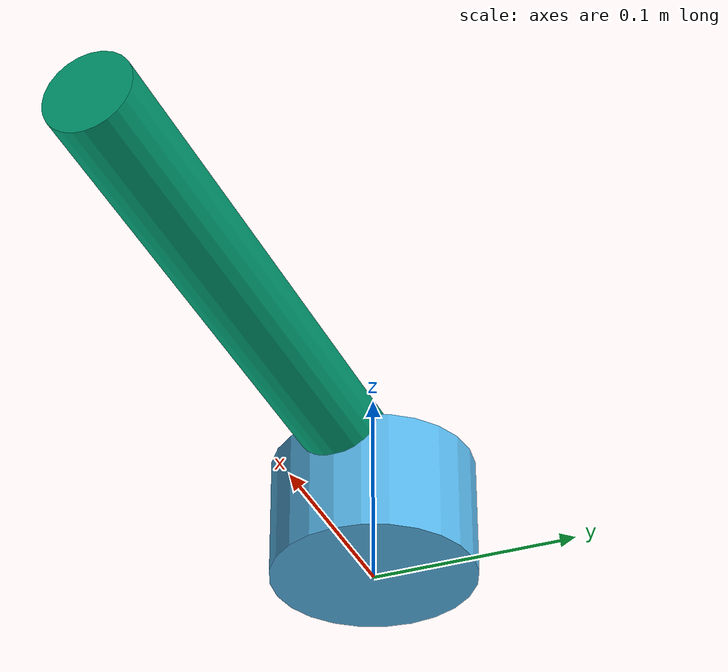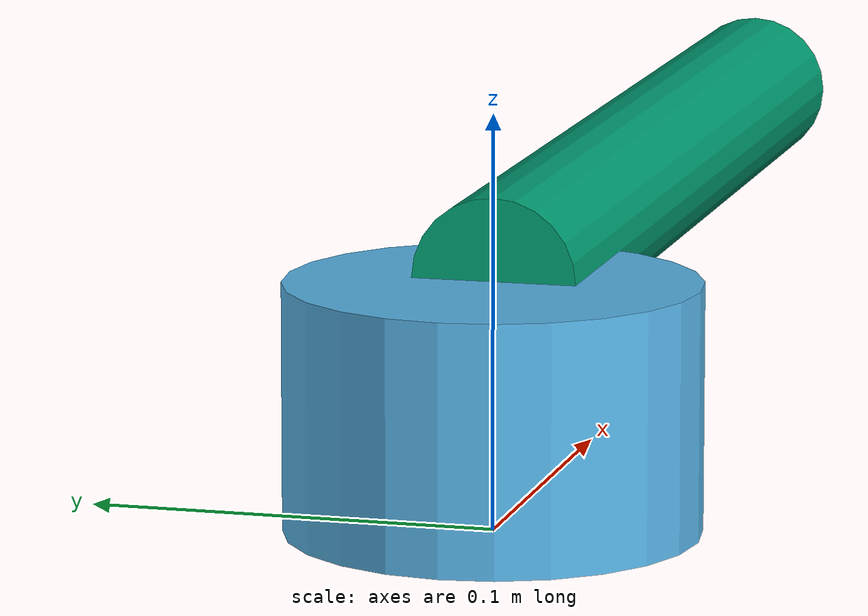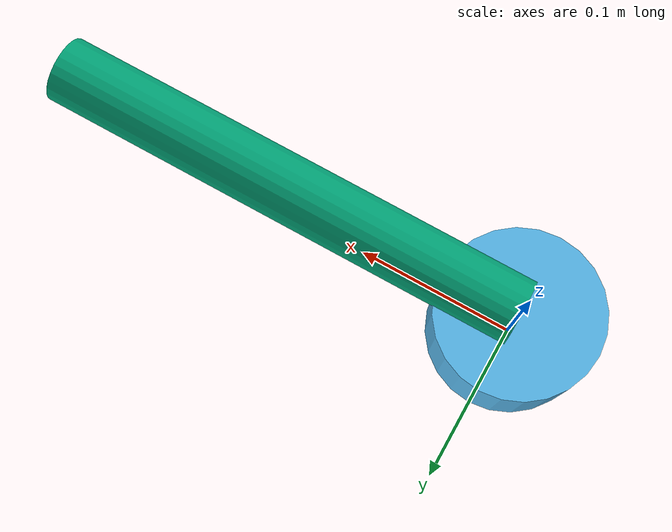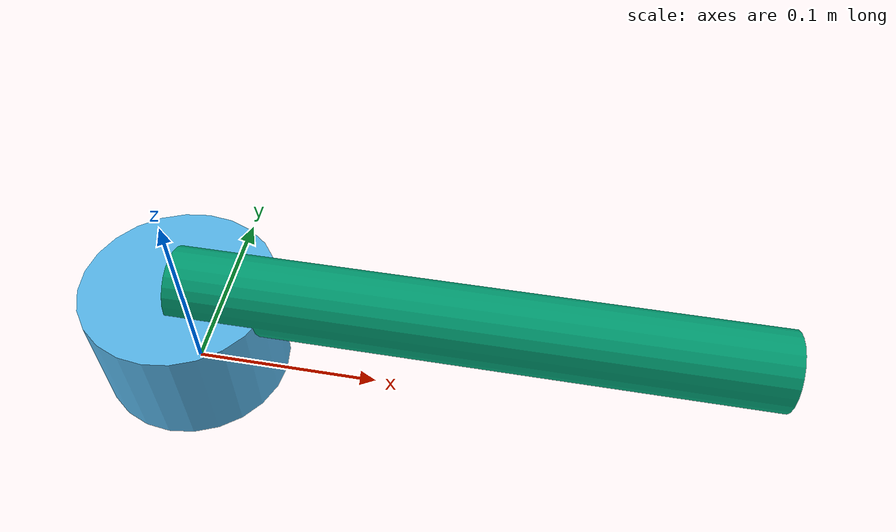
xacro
<?xml version="1.0"?>
<!-- SPDX-License-Identifier: Apache-2.0 -->
<robot name="am_demo_one_joint" xmlns:xacro="http://www.ros.org/wiki/xacro">
  <xacro:arg name="unit" default="M"/>
  <xacro:arg name="backend" default="sim"/>
  <xacro:arg name="joint_name" default="joint1"/>
  <xacro:arg name="arm_inertia" default="0.05"/>

  <xacro:include filename="$(find am_description)/urdf/am_units.urdf.xacro"/>
  <xacro:include filename="$(find am_description)/urdf/am_ros2_control.xacro"/>

  <xacro:property name="unit" value="$(arg unit)"/>
  <xacro:property name="arm_inertia" value="$(arg arm_inertia)"/>

  <link name="world"/>
  <link name="base_link">
    <visual>
      <geometry><cylinder radius="0.05" length="0.06"/></geometry>
      <origin xyz="0 0 0.03"/>
    </visual>
  </link>
  <joint name="world_to_base" type="fixed">
    <parent link="world"/>
    <child link="base_link"/>
  </joint>

  <!-- Arm: 1 kg. Its inertia about the joint axis is passed to the simulator as sim_load_inertia. -->
  <link name="arm_link">
    <inertial>
      <origin xyz="0.15 0 0"/>
      <mass value="1.0"/>
      <inertia ixx="0.001" ixy="0" ixz="0" iyy="${arm_inertia}" iyz="0" izz="${arm_inertia}"/>
    </inertial>
    <visual>
      <origin xyz="0.15 0 0" rpy="0 ${pi/2} 0"/>
      <geometry><cylinder radius="0.02" length="0.3"/></geometry>
    </visual>
  </link>

  <xacro:am_joint unit="${unit}" name="$(arg joint_name)" parent="base_link" child="arm_link"
                  lower="${-2.5}" upper="${2.5}">
    <origin xyz="0 0 0.06" rpy="0 0 0"/>
  </xacro:am_joint>

  <xacro:am_ros2_control name="am_system" backend="$(arg backend)" cycle_us="1000">
    <joints>
      <xacro:am_ros2_control_joint name="$(arg joint_name)" unit="${unit}" sim_load_inertia="${arm_inertia}"/>
    </joints>
  </xacro:am_ros2_control>
</robot>

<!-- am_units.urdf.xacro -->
<!-- Generated by tools/gen_ros2_xacro.py from python/am_sdk/data. Do not edit. -->
<!-- SPDX-License-Identifier: Apache-2.0 -->
<robot xmlns:xacro="http://www.ros.org/wiki/xacro">

  <xacro:property name="am_units" value="['S-S', 'S-D', 'M', 'H-F', 'H-T', 'H-X']"/>

  <!-- S-S: gear ratio 20:1, reflected inertia 0.004939 kg m^2, rated (continuous) 14.28 N m. Data revision 2026-10-12 -->
  <xacro:property name="am_S_S_peak_torque" value="30"/>
  <xacro:property name="am_S_S_rated_torque" value="14.28"/>
  <xacro:property name="am_S_S_velocity" value="20.6612"/>
  <xacro:property name="am_S_S_velocity_36v" value="15.3624"/>
  <xacro:property name="am_S_S_friction" value="0.65"/>
  <xacro:property name="am_S_S_armature" value="0.004939"/>
  <xacro:property name="am_S_S_mass" value="0.5619"/>
  <xacro:property name="am_S_S_gear_ratio" value="20"/>
  <xacro:property name="am_S_S_stiffness_max" value="701.942"/>
  <xacro:property name="am_S_S_damping_max" value="3.72392"/>
  <xacro:macro name="am_S_S_joint" params="name parent child *origin lower:=${-pi} upper:=${pi} axis:='0 0 1'">
    <joint name="${name}" type="revolute">
      <xacro:insert_block name="origin"/>
      <parent link="${parent}"/>
      <child link="${child}"/>
      <axis xyz="${axis}"/>
      <limit lower="${lower}" upper="${upper}" effort="${am_S_S_peak_torque}" velocity="${am_S_S_velocity}"/>
      <dynamics damping="0.0" friction="${am_S_S_friction}"/>
    </joint>
  </xacro:macro>

  <!-- S-D: gear ratio 9:1, reflected inertia 0.000968 kg m^2, rated (continuous) 7.08 N m. Data revision 2026-10-12 -->
  <xacro:property name="am_S_D_peak_torque" value="15"/>
  <xacro:property name="am_S_D_rated_torque" value="7.08"/>
  <xacro:property name="am_S_D_velocity" value="42.7466"/>
  <xacro:property name="am_S_D_velocity_36v" value="31.772"/>
  <xacro:property name="am_S_D_friction" value="0.36"/>
  <xacro:property name="am_S_D_armature" value="0.000968"/>
  <xacro:property name="am_S_D_mass" value="0.4678"/>
  <xacro:property name="am_S_D_gear_ratio" value="9"/>
  <xacro:property name="am_S_D_stiffness_max" value="137.574"/>
  <xacro:property name="am_S_D_damping_max" value="0.729855"/>
  <xacro:macro name="am_S_D_joint" params="name parent child *origin lower:=${-pi} upper:=${pi} axis:='0 0 1'">
    <joint name="${name}" type="revolute">
      <xacro:insert_block name="origin"/>
      <parent link="${parent}"/>
      <child link="${child}"/>
      <axis xyz="${axis}"/>
      <limit lower="${lower}" upper="${upper}" effort="${am_S_D_peak_torque}" velocity="${am_S_D_velocity}"/>
      <dynamics damping="0.0" friction="${am_S_D_friction}"/>
    </joint>
  </xacro:macro>

  <!-- M: gear ratio 21.6:1, reflected inertia 0.0279 kg m^2, rated (continuous) 34.1 N m. Data revision 2026-10-12 -->
  <xacro:property name="am_M_peak_torque" value="76.5"/>
  <xacro:property name="am_M_rated_torque" value="34.1"/>
  <xacro:property name="am_M_velocity" value="12.3674"/>
  <xacro:property name="am_M_velocity_36v" value="9.23628"/>
  <xacro:property name="am_M_friction" value="1.47"/>
  <xacro:property name="am_M_armature" value="0.0279"/>
  <xacro:property name="am_M_mass" value="0.99"/>
  <xacro:property name="am_M_gear_ratio" value="21.6"/>
  <xacro:property name="am_M_stiffness_max" value="3965.21"/>
  <xacro:property name="am_M_damping_max" value="21.0361"/>
  <xacro:macro name="am_M_joint" params="name parent child *origin lower:=${-pi} upper:=${pi} axis:='0 0 1'">
    <joint name="${name}" type="revolute">
      <xacro:insert_block name="origin"/>
      <parent link="${parent}"/>
      <child link="${child}"/>
      <axis xyz="${axis}"/>
      <limit lower="${lower}" upper="${upper}" effort="${am_M_peak_torque}" velocity="${am_M_velocity}"/>
      <dynamics damping="0.0" friction="${am_M_friction}"/>
    </joint>
  </xacro:macro>

  <!-- H-F: gear ratio 22.5:1, reflected inertia 0.0463534 kg m^2, rated (continuous) 54.73 N m. Data revision 2026-10-12 -->
  <xacro:property name="am_H_F_peak_torque" value="115"/>
  <xacro:property name="am_H_F_rated_torque" value="54.73"/>
  <xacro:property name="am_H_F_velocity" value="14.6189"/>
  <xacro:property name="am_H_F_velocity_36v" value="10.849"/>
  <xacro:property name="am_H_F_friction" value="1.72"/>
  <xacro:property name="am_H_F_armature" value="0.0463534"/>
  <xacro:property name="am_H_F_mass" value="1.5047"/>
  <xacro:property name="am_H_F_gear_ratio" value="22.5"/>
  <xacro:property name="am_H_F_stiffness_max" value="6587.85"/>
  <xacro:property name="am_H_F_damping_max" value="34.9496"/>
  <xacro:macro name="am_H_F_joint" params="name parent child *origin lower:=${-pi} upper:=${pi} axis:='0 0 1'">
    <joint name="${name}" type="revolute">
      <xacro:insert_block name="origin"/>
      <parent link="${parent}"/>
      <child link="${child}"/>
      <axis xyz="${axis}"/>
      <limit lower="${lower}" upper="${upper}" effort="${am_H_F_peak_torque}" velocity="${am_H_F_velocity}"/>
      <dynamics damping="0.0" friction="${am_H_F_friction}"/>
    </joint>
  </xacro:macro>

  <!-- H-T: gear ratio 20.25:1, reflected inertia 0.0704769 kg m^2, rated (continuous) 93.3 N m. Data revision 2026-10-12 -->
  <xacro:property name="am_H_T_peak_torque" value="210"/>
  <xacro:property name="am_H_T_rated_torque" value="93.3"/>
  <xacro:property name="am_H_T_velocity" value="11.6972"/>
  <xacro:property name="am_H_T_velocity_36v" value="8.69174"/>
  <xacro:property name="am_H_T_friction" value="1.58"/>
  <xacro:property name="am_H_T_armature" value="0.0704769"/>
  <xacro:property name="am_H_T_mass" value="1.9994"/>
  <xacro:property name="am_H_T_gear_ratio" value="20.25"/>
  <xacro:property name="am_H_T_stiffness_max" value="10016.3"/>
  <xacro:property name="am_H_T_damping_max" value="53.1384"/>
  <xacro:macro name="am_H_T_joint" params="name parent child *origin lower:=${-pi} upper:=${pi} axis:='0 0 1'">
    <joint name="${name}" type="revolute">
      <xacro:insert_block name="origin"/>
      <parent link="${parent}"/>
      <child link="${child}"/>
      <axis xyz="${axis}"/>
      <limit lower="${lower}" upper="${upper}" effort="${am_H_T_peak_torque}" velocity="${am_H_T_velocity}"/>
      <dynamics damping="0.0" friction="${am_H_T_friction}"/>
    </joint>
  </xacro:macro>

  <!-- H-X: gear ratio 23.4:1, reflected inertia 0.179986 kg m^2, rated (continuous) 136.41 N m. Data revision 2026-10-12 -->
  <xacro:property name="am_H_X_peak_torque" value="262"/>
  <xacro:property name="am_H_X_rated_torque" value="136.41"/>
  <xacro:property name="am_H_X_velocity" value="12.1999"/>
  <xacro:property name="am_H_X_velocity_36v" value="9.11062"/>
  <xacro:property name="am_H_X_friction" value="1.72"/>
  <xacro:property name="am_H_X_armature" value="0.179986"/>
  <xacro:property name="am_H_X_mass" value="2.65"/>
  <xacro:property name="am_H_X_gear_ratio" value="23.4"/>
  <xacro:property name="am_H_X_stiffness_max" value="25580"/>
  <xacro:property name="am_H_X_damping_max" value="135.706"/>
  <xacro:macro name="am_H_X_joint" params="name parent child *origin lower:=${-pi} upper:=${pi} axis:='0 0 1'">
    <joint name="${name}" type="revolute">
      <xacro:insert_block name="origin"/>
      <parent link="${parent}"/>
      <child link="${child}"/>
      <axis xyz="${axis}"/>
      <limit lower="${lower}" upper="${upper}" effort="${am_H_X_peak_torque}" velocity="${am_H_X_velocity}"/>
      <dynamics damping="0.0" friction="${am_H_X_friction}"/>
    </joint>
  </xacro:macro>

  <!-- Unit dispatch. An unknown unit calls a macro that does not exist, so xacro stops with an error. -->
  <xacro:macro name="am_check_unit" params="unit">
    <xacro:unless value="${unit in am_units}">
      <xacro:ERROR_unknown_am_unit_use_S_S_S_D_M_H_F_H_T_or_H_X unit="${unit}"/>
    </xacro:unless>
  </xacro:macro>

  <xacro:macro name="am_joint" params="unit name parent child *origin lower:=${-pi} upper:=${pi} axis:='0 0 1'">
    <xacro:am_check_unit unit="${unit}"/>
    <xacro:if value="${unit == 'S-S'}">
      <xacro:am_S_S_joint name="${name}" parent="${parent}" child="${child}" lower="${lower}" upper="${upper}" axis="${axis}">
        <xacro:insert_block name="origin"/>
      </xacro:am_S_S_joint>
    </xacro:if>
    <xacro:if value="${unit == 'S-D'}">
      <xacro:am_S_D_joint name="${name}" parent="${parent}" child="${child}" lower="${lower}" upper="${upper}" axis="${axis}">
        <xacro:insert_block name="origin"/>
      </xacro:am_S_D_joint>
    </xacro:if>
    <xacro:if value="${unit == 'M'}">
      <xacro:am_M_joint name="${name}" parent="${parent}" child="${child}" lower="${lower}" upper="${upper}" axis="${axis}">
        <xacro:insert_block name="origin"/>
      </xacro:am_M_joint>
    </xacro:if>
    <xacro:if value="${unit == 'H-F'}">
      <xacro:am_H_F_joint name="${name}" parent="${parent}" child="${child}" lower="${lower}" upper="${upper}" axis="${axis}">
        <xacro:insert_block name="origin"/>
      </xacro:am_H_F_joint>
    </xacro:if>
    <xacro:if value="${unit == 'H-T'}">
      <xacro:am_H_T_joint name="${name}" parent="${parent}" child="${child}" lower="${lower}" upper="${upper}" axis="${axis}">
        <xacro:insert_block name="origin"/>
      </xacro:am_H_T_joint>
    </xacro:if>
    <xacro:if value="${unit == 'H-X'}">
      <xacro:am_H_X_joint name="${name}" parent="${parent}" child="${child}" lower="${lower}" upper="${upper}" axis="${axis}">
        <xacro:insert_block name="origin"/>
      </xacro:am_H_X_joint>
    </xacro:if>
  </xacro:macro>

  <xacro:macro name="am_ros2_control_joint" params="name unit address:=-1 default_stiffness:='' default_damping:='' sim_load_inertia:=0 sim_initial_position:=0">
    <xacro:am_check_unit unit="${unit}"/>
    <xacro:if value="${unit == 'S-S'}">
      <joint name="${name}">
        <param name="unit">S-S</param>
        <xacro:if value="${address >= 0}"><param name="address">${address}</param></xacro:if>
        <xacro:if value="${str(default_stiffness) != ''}"><param name="default_stiffness">${default_stiffness}</param></xacro:if>
        <xacro:if value="${str(default_damping) != ''}"><param name="default_damping">${default_damping}</param></xacro:if>
        <param name="sim_load_inertia">${sim_load_inertia}</param>
        <param name="sim_initial_position">${sim_initial_position}</param>
        <command_interface name="position"/>
        <command_interface name="velocity">
          <param name="min">${-am_S_S_velocity}</param>
          <param name="max">${am_S_S_velocity}</param>
        </command_interface>
        <command_interface name="effort">
          <param name="min">${-am_S_S_peak_torque}</param>
          <param name="max">${am_S_S_peak_torque}</param>
        </command_interface>
        <command_interface name="stiffness">
          <param name="min">0</param>
          <param name="max">${am_S_S_stiffness_max}</param>
        </command_interface>
        <command_interface name="damping">
          <param name="min">0</param>
          <param name="max">${am_S_S_damping_max}</param>
        </command_interface>
        <state_interface name="position"/>
        <state_interface name="velocity"/>
        <state_interface name="effort"/>
        <state_interface name="temperature"/>
      </joint>
    </xacro:if>
    <xacro:if value="${unit == 'S-D'}">
      <joint name="${name}">
        <param name="unit">S-D</param>
        <xacro:if value="${address >= 0}"><param name="address">${address}</param></xacro:if>
        <xacro:if value="${str(default_stiffness) != ''}"><param name="default_stiffness">${default_stiffness}</param></xacro:if>
        <xacro:if value="${str(default_damping) != ''}"><param name="default_damping">${default_damping}</param></xacro:if>
        <param name="sim_load_inertia">${sim_load_inertia}</param>
        <param name="sim_initial_position">${sim_initial_position}</param>
        <command_interface name="position"/>
        <command_interface name="velocity">
          <param name="min">${-am_S_D_velocity}</param>
          <param name="max">${am_S_D_velocity}</param>
        </command_interface>
        <command_interface name="effort">
          <param name="min">${-am_S_D_peak_torque}</param>
          <param name="max">${am_S_D_peak_torque}</param>
        </command_interface>
        <command_interface name="stiffness">
          <param name="min">0</param>
          <param name="max">${am_S_D_stiffness_max}</param>
        </command_interface>
        <command_interface name="damping">
          <param name="min">0</param>
          <param name="max">${am_S_D_damping_max}</param>
        </command_interface>
        <state_interface name="position"/>
        <state_interface name="velocity"/>
        <state_interface name="effort"/>
        <state_interface name="temperature"/>
      </joint>
    </xacro:if>
    <xacro:if value="${unit == 'M'}">
      <joint name="${name}">
        <param name="unit">M</param>
        <xacro:if value="${address >= 0}"><param name="address">${address}</param></xacro:if>
        <xacro:if value="${str(default_stiffness) != ''}"><param name="default_stiffness">${default_stiffness}</param></xacro:if>
        <xacro:if value="${str(default_damping) != ''}"><param name="default_damping">${default_damping}</param></xacro:if>
        <param name="sim_load_inertia">${sim_load_inertia}</param>
        <param name="sim_initial_position">${sim_initial_position}</param>
        <command_interface name="position"/>
        <command_interface name="velocity">
          <param name="min">${-am_M_velocity}</param>
          <param name="max">${am_M_velocity}</param>
        </command_interface>
        <command_interface name="effort">
          <param name="min">${-am_M_peak_torque}</param>
          <param name="max">${am_M_peak_torque}</param>
        </command_interface>
        <command_interface name="stiffness">
          <param name="min">0</param>
          <param name="max">${am_M_stiffness_max}</param>
        </command_interface>
        <command_interface name="damping">
          <param name="min">0</param>
          <param name="max">${am_M_damping_max}</param>
        </command_interface>
        <state_interface name="position"/>
        <state_interface name="velocity"/>
        <state_interface name="effort"/>
        <state_interface name="temperature"/>
      </joint>
    </xacro:if>
    <xacro:if value="${unit == 'H-F'}">
      <joint name="${name}">
        <param name="unit">H-F</param>
        <xacro:if value="${address >= 0}"><param name="address">${address}</param></xacro:if>
        <xacro:if value="${str(default_stiffness) != ''}"><param name="default_stiffness">${default_stiffness}</param></xacro:if>
        <xacro:if value="${str(default_damping) != ''}"><param name="default_damping">${default_damping}</param></xacro:if>
        <param name="sim_load_inertia">${sim_load_inertia}</param>
        <param name="sim_initial_position">${sim_initial_position}</param>
        <command_interface name="position"/>
        <command_interface name="velocity">
          <param name="min">${-am_H_F_velocity}</param>
          <param name="max">${am_H_F_velocity}</param>
        </command_interface>
        <command_interface name="effort">
          <param name="min">${-am_H_F_peak_torque}</param>
          <param name="max">${am_H_F_peak_torque}</param>
        </command_interface>
        <command_interface name="stiffness">
          <param name="min">0</param>
          <param name="max">${am_H_F_stiffness_max}</param>
        </command_interface>
        <command_interface name="damping">
          <param name="min">0</param>
          <param name="max">${am_H_F_damping_max}</param>
        </command_interface>
        <state_interface name="position"/>
        <state_interface name="velocity"/>
        <state_interface name="effort"/>
        <state_interface name="temperature"/>
      </joint>
    </xacro:if>
    <xacro:if value="${unit == 'H-T'}">
      <joint name="${name}">
        <param name="unit">H-T</param>
        <xacro:if value="${address >= 0}"><param name="address">${address}</param></xacro:if>
        <xacro:if value="${str(default_stiffness) != ''}"><param name="default_stiffness">${default_stiffness}</param></xacro:if>
        <xacro:if value="${str(default_damping) != ''}"><param name="default_damping">${default_damping}</param></xacro:if>
        <param name="sim_load_inertia">${sim_load_inertia}</param>
        <param name="sim_initial_position">${sim_initial_position}</param>
        <command_interface name="position"/>
        <command_interface name="velocity">
          <param name="min">${-am_H_T_velocity}</param>
          <param name="max">${am_H_T_velocity}</param>
        </command_interface>
        <command_interface name="effort">
          <param name="min">${-am_H_T_peak_torque}</param>
          <param name="max">${am_H_T_peak_torque}</param>
        </command_interface>
        <command_interface name="stiffness">
          <param name="min">0</param>
          <param name="max">${am_H_T_stiffness_max}</param>
        </command_interface>
        <command_interface name="damping">
          <param name="min">0</param>
          <param name="max">${am_H_T_damping_max}</param>
        </command_interface>
        <state_interface name="position"/>
        <state_interface name="velocity"/>
        <state_interface name="effort"/>
        <state_interface name="temperature"/>
      </joint>
    </xacro:if>
    <xacro:if value="${unit == 'H-X'}">
      <joint name="${name}">
        <param name="unit">H-X</param>
        <xacro:if value="${address >= 0}"><param name="address">${address}</param></xacro:if>
        <xacro:if value="${str(default_stiffness) != ''}"><param name="default_stiffness">${default_stiffness}</param></xacro:if>
        <xacro:if value="${str(default_damping) != ''}"><param name="default_damping">${default_damping}</param></xacro:if>
        <param name="sim_load_inertia">${sim_load_inertia}</param>
        <param name="sim_initial_position">${sim_initial_position}</param>
        <command_interface name="position"/>
        <command_interface name="velocity">
          <param name="min">${-am_H_X_velocity}</param>
          <param name="max">${am_H_X_velocity}</param>
        </command_interface>
        <command_interface name="effort">
          <param name="min">${-am_H_X_peak_torque}</param>
          <param name="max">${am_H_X_peak_torque}</param>
        </command_interface>
        <command_interface name="stiffness">
          <param name="min">0</param>
          <param name="max">${am_H_X_stiffness_max}</param>
        </command_interface>
        <command_interface name="damping">
          <param name="min">0</param>
          <param name="max">${am_H_X_damping_max}</param>
        </command_interface>
        <state_interface name="position"/>
        <state_interface name="velocity"/>
        <state_interface name="effort"/>
        <state_interface name="temperature"/>
      </joint>
    </xacro:if>
  </xacro:macro>

</robot>
